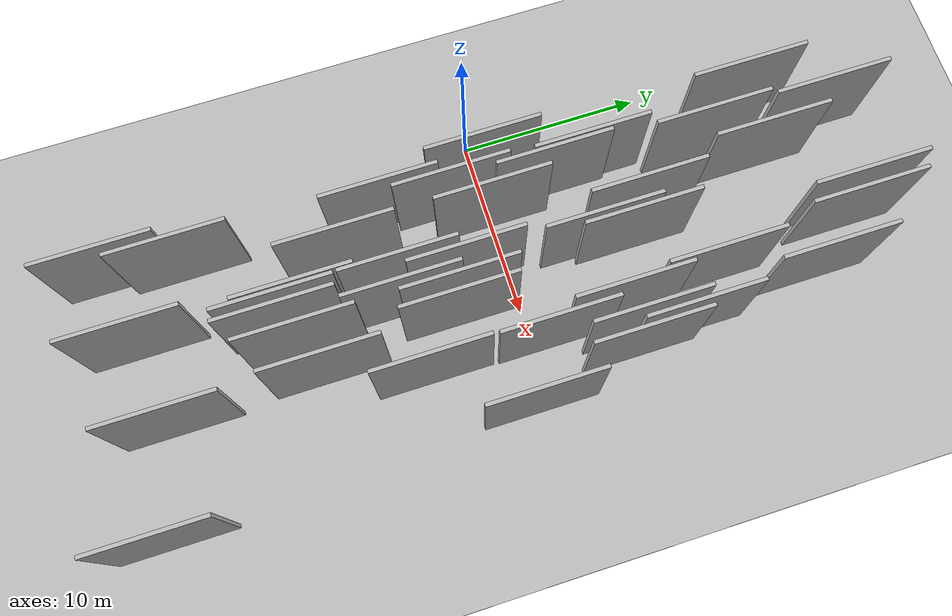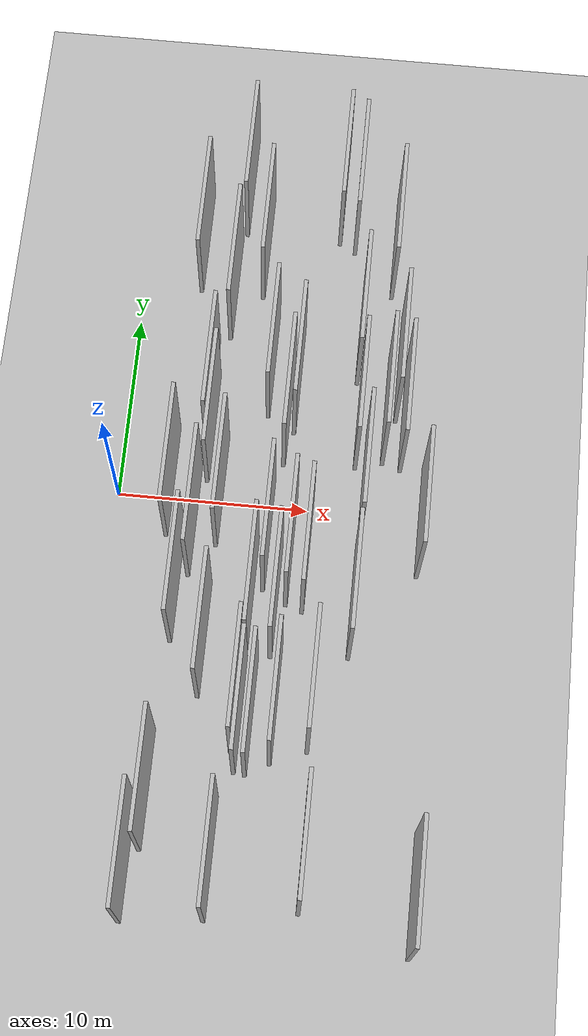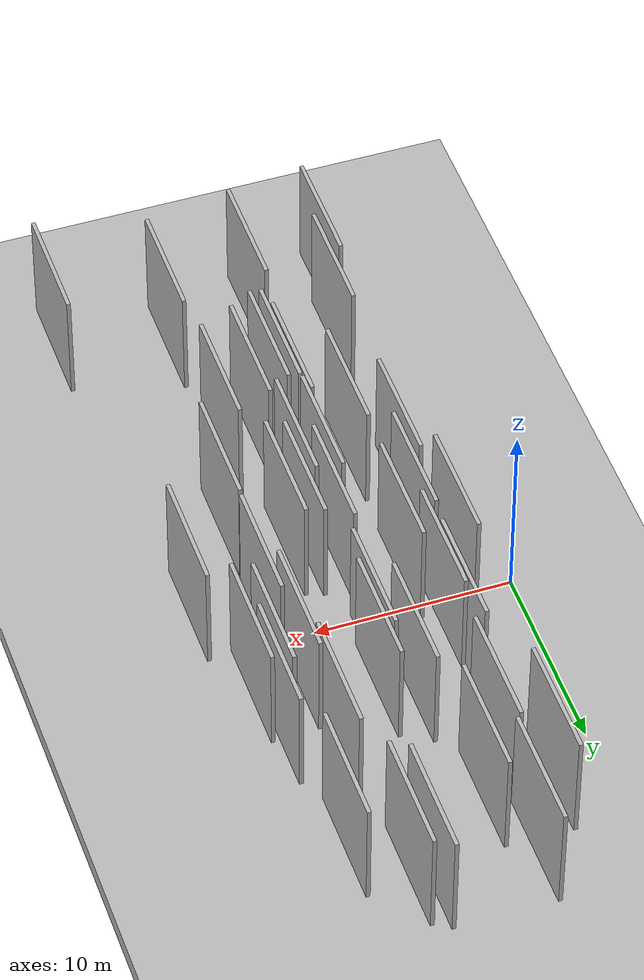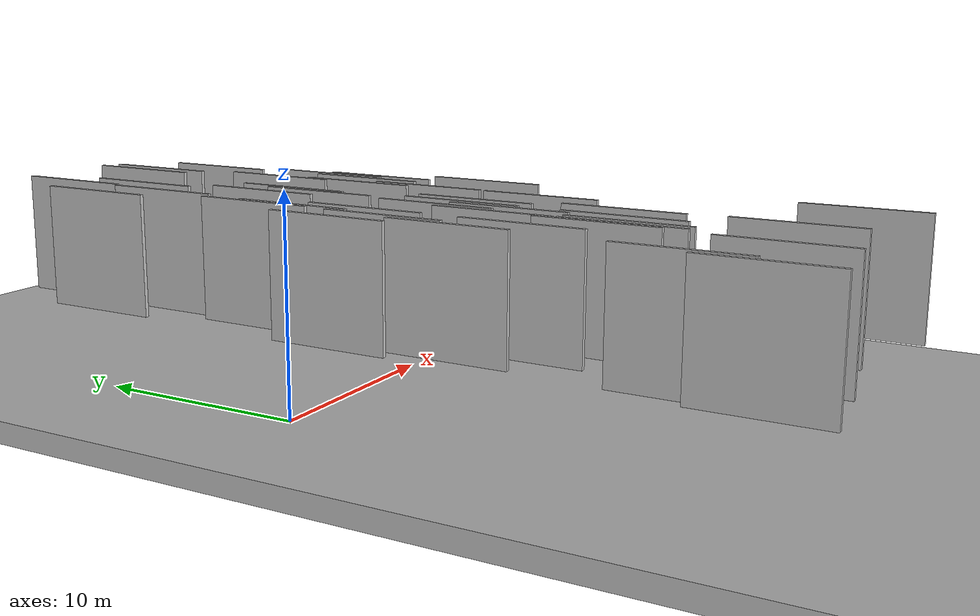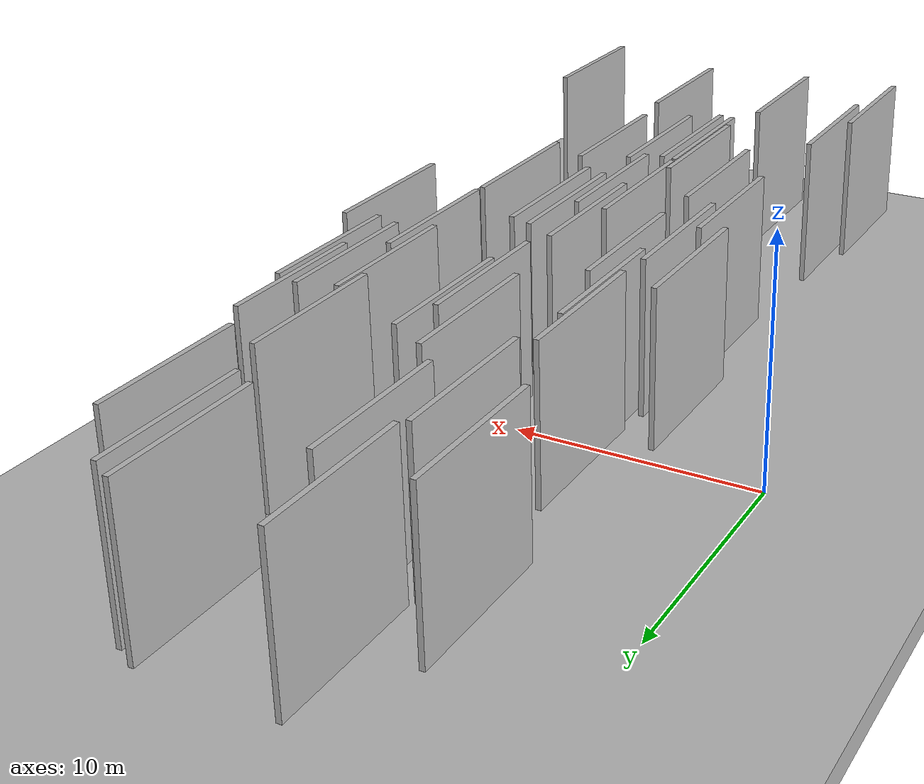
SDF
<?xml version="1.0" encoding="utf-8"?>

<sdf version="1.6">

   <world name="default">

      <gui fullscreen="0">

         <camera name="user_camera">

            <pose>-15 0 4.57585 0 0 0</pose>

            <view_controller>orbit</view_controller>

         </camera>

      </gui>

      <scene>

         <sky>

           <clouds>

             <speed>12</speed>

           </clouds>

         </sky>

         <ambient>0.4 0.4 0.4 1</ambient>

         <background>0.7 0.7 0.7 1</background>

         <shadows>1</shadows>

      </scene>

      <gravity>0 0 -9.8066</gravity>

      <magnetic_field>6e-06 2.3e-05 -4.2e-05</magnetic_field>

      <physics default="0" name="default_physics" type="ode">

         <ode>

            <solver>

               <type>quick</type>

               <iters>10</iters>

               <sor>1.0</sor>

               <use_dynamic_moi_rescaling>0</use_dynamic_moi_rescaling>

            </solver>

            <constraints>

               <cfm>0</cfm>

               <erp>0.2</erp>

               <contact_max_correcting_vel>100</contact_max_correcting_vel>

               <contact_surface_layer>0.001</contact_surface_layer>

            </constraints>

         </ode>

         <max_step_size>0.004</max_step_size>

         <real_time_factor>1</real_time_factor>

         <real_time_update_rate>250</real_time_update_rate>

      </physics>

      <light name="sun" type="directional">

         <cast_shadows>1</cast_shadows>

         <pose>0 0 10 0 0 0</pose>

         <diffuse>0.8 0.8 0.8 1</diffuse>

         <specular>0.2 0.2 0.2 1</specular>

         <attenuation>

            <range>1000</range>

            <constant>0.9</constant>

            <linear>0.01</linear>

            <quadratic>0.001</quadratic>

         </attenuation>

         <direction>-0.5 0.1 -0.9</direction>

      </light>

      <include>

         <name>ground_plane_1</name>

         <uri>model://HANNAS_ground_plane</uri>

         <pose>0 0 0  0 0 0</pose>

      </include>

      <include>

         <name>ground_plane_2</name>

         <uri>model://HANNAS_ground_plane</uri>

         <pose>100 0 0  0 0 0</pose>

      </include>

      <model name="HANNAS_wall_1">

         <static>1</static>

         <pose frame="">8.6059 4.4555 2.5 0.000000 0.000000 1.570796</pose>

         <link name="link">

            <pose frame="">0 0 3.00 0 0 0</pose>

            <collision name="collision">

               <geometry>

                  <box>

                     <size>6.00 0.2 6.00</size>

                  </box>

               </geometry>

               <max_contacts>10</max_contacts>

               <surface>

                  <contact>

                     <ode/>

                  </contact>

                  <bounce/>

                  <friction>

                     <torsional>

                        <ode/>

                     </torsional>

                     <ode/>

                  </friction>

               </surface>

            </collision>

            <visual name="visual">

               <cast_shadows>0</cast_shadows>

               <geometry>

                  <box>

                     <size>6.00 0.2 6.00</size>

                  </box>

               </geometry>

               <material>

                  <script>

                     <uri>model://HANNAS_wall/materials/scripts</uri>

                     <uri>model://HANNAS_wall/materials/textures</uri>

                     <name>vrc/HANNAS_wall</name>

                  </script>

               </material>

            </visual>

            <self_collide>0</self_collide>

            <enable_wind>0</enable_wind>

            <kinematic>0</kinematic>

         </link>

      </model>

      <model name="HANNAS_wall_2">

         <static>1</static>

         <pose frame="">14.1788 7.4548 2.5 0.000000 0.000000 1.570796</pose>

         <link name="link">

            <pose frame="">0 0 3.00 0 0 0</pose>

            <collision name="collision">

               <geometry>

                  <box>

                     <size>6.00 0.2 6.00</size>

                  </box>

               </geometry>

               <max_contacts>10</max_contacts>

               <surface>

                  <contact>

                     <ode/>

                  </contact>

                  <bounce/>

                  <friction>

                     <torsional>

                        <ode/>

                     </torsional>

                     <ode/>

                  </friction>

               </surface>

            </collision>

            <visual name="visual">

               <cast_shadows>0</cast_shadows>

               <geometry>

                  <box>

                     <size>6.00 0.2 6.00</size>

                  </box>

               </geometry>

               <material>

                  <script>

                     <uri>model://HANNAS_wall/materials/scripts</uri>

                     <uri>model://HANNAS_wall/materials/textures</uri>

                     <name>vrc/HANNAS_wall</name>

                  </script>

               </material>

            </visual>

            <self_collide>0</self_collide>

            <enable_wind>0</enable_wind>

            <kinematic>0</kinematic>

         </link>

      </model>

      <model name="HANNAS_wall_3">

         <static>1</static>

         <pose frame="">3.0007 0.1063 2.5 0.000000 0.000000 1.570796</pose>

         <link name="link">

            <pose frame="">0 0 3.00 0 0 0</pose>

            <collision name="collision">

               <geometry>

                  <box>

                     <size>6.00 0.2 6.00</size>

                  </box>

               </geometry>

               <max_contacts>10</max_contacts>

               <surface>

                  <contact>

                     <ode/>

                  </contact>

                  <bounce/>

                  <friction>

                     <torsional>

                        <ode/>

                     </torsional>

                     <ode/>

                  </friction>

               </surface>

            </collision>

            <visual name="visual">

               <cast_shadows>0</cast_shadows>

               <geometry>

                  <box>

                     <size>6.00 0.2 6.00</size>

                  </box>

               </geometry>

               <material>

                  <script>

                     <uri>model://HANNAS_wall/materials/scripts</uri>

                     <uri>model://HANNAS_wall/materials/textures</uri>

                     <name>vrc/HANNAS_wall</name>

                  </script>

               </material>

            </visual>

            <self_collide>0</self_collide>

            <enable_wind>0</enable_wind>

            <kinematic>0</kinematic>

         </link>

      </model>

      <model name="HANNAS_wall_4">

         <static>1</static>

         <pose frame="">16.7987 -19.7199 2.5 0.000000 0.000000 1.570796</pose>

         <link name="link">

            <pose frame="">0 0 3.00 0 0 0</pose>

            <collision name="collision">

               <geometry>

                  <box>

                     <size>6.00 0.2 6.00</size>

                  </box>

               </geometry>

               <max_contacts>10</max_contacts>

               <surface>

                  <contact>

                     <ode/>

                  </contact>

                  <bounce/>

                  <friction>

                     <torsional>

                        <ode/>

                     </torsional>

                     <ode/>

                  </friction>

               </surface>

            </collision>

            <visual name="visual">

               <cast_shadows>0</cast_shadows>

               <geometry>

                  <box>

                     <size>6.00 0.2 6.00</size>

                  </box>

               </geometry>

               <material>

                  <script>

                     <uri>model://HANNAS_wall/materials/scripts</uri>

                     <uri>model://HANNAS_wall/materials/textures</uri>

                     <name>vrc/HANNAS_wall</name>

                  </script>

               </material>

            </visual>

            <self_collide>0</self_collide>

            <enable_wind>0</enable_wind>

            <kinematic>0</kinematic>

         </link>

      </model>

      <model name="HANNAS_wall_5">

         <static>1</static>

         <pose frame="">3.5730 -15.8631 2.5 0.000000 0.000000 1.570796</pose>

         <link name="link">

            <pose frame="">0 0 3.00 0 0 0</pose>

            <collision name="collision">

               <geometry>

                  <box>

                     <size>6.00 0.2 6.00</size>

                  </box>

               </geometry>

               <max_contacts>10</max_contacts>

               <surface>

                  <contact>

                     <ode/>

                  </contact>

                  <bounce/>

                  <friction>

                     <torsional>

                        <ode/>

                     </torsional>

                     <ode/>

                  </friction>

               </surface>

            </collision>

            <visual name="visual">

               <cast_shadows>0</cast_shadows>

               <geometry>

                  <box>

                     <size>6.00 0.2 6.00</size>

                  </box>

               </geometry>

               <material>

                  <script>

                     <uri>model://HANNAS_wall/materials/scripts</uri>

                     <uri>model://HANNAS_wall/materials/textures</uri>

                     <name>vrc/HANNAS_wall</name>

                  </script>

               </material>

            </visual>

            <self_collide>0</self_collide>

            <enable_wind>0</enable_wind>

            <kinematic>0</kinematic>

         </link>

      </model>

      <model name="HANNAS_wall_6">

         <static>1</static>

         <pose frame="">11.4477 -18.1524 2.5 0.000000 0.000000 1.570796</pose>

         <link name="link">

            <pose frame="">0 0 3.00 0 0 0</pose>

            <collision name="collision">

               <geometry>

                  <box>

                     <size>6.00 0.2 6.00</size>

                  </box>

               </geometry>

               <max_contacts>10</max_contacts>

               <surface>

                  <contact>

                     <ode/>

                  </contact>

                  <bounce/>

                  <friction>

                     <torsional>

                        <ode/>

                     </torsional>

                     <ode/>

                  </friction>

               </surface>

            </collision>

            <visual name="visual">

               <cast_shadows>0</cast_shadows>

               <geometry>

                  <box>

                     <size>6.00 0.2 6.00</size>

                  </box>

               </geometry>

               <material>

                  <script>

                     <uri>model://HANNAS_wall/materials/scripts</uri>

                     <uri>model://HANNAS_wall/materials/textures</uri>

                     <name>vrc/HANNAS_wall</name>

                  </script>

               </material>

            </visual>

            <self_collide>0</self_collide>

            <enable_wind>0</enable_wind>

            <kinematic>0</kinematic>

         </link>

      </model>

      <model name="HANNAS_wall_7">

         <static>1</static>

         <pose frame="">8.9062 -5.7655 2.5 0.000000 0.000000 1.570796</pose>

         <link name="link">

            <pose frame="">0 0 3.00 0 0 0</pose>

            <collision name="collision">

               <geometry>

                  <box>

                     <size>6.00 0.2 6.00</size>

                  </box>

               </geometry>

               <max_contacts>10</max_contacts>

               <surface>

                  <contact>

                     <ode/>

                  </contact>

                  <bounce/>

                  <friction>

                     <torsional>

                        <ode/>

                     </torsional>

                     <ode/>

                  </friction>

               </surface>

            </collision>

            <visual name="visual">

               <cast_shadows>0</cast_shadows>

               <geometry>

                  <box>

                     <size>6.00 0.2 6.00</size>

                  </box>

               </geometry>

               <material>

                  <script>

                     <uri>model://HANNAS_wall/materials/scripts</uri>

                     <uri>model://HANNAS_wall/materials/textures</uri>

                     <name>vrc/HANNAS_wall</name>

                  </script>

               </material>

            </visual>

            <self_collide>0</self_collide>

            <enable_wind>0</enable_wind>

            <kinematic>0</kinematic>

         </link>

      </model>

      <model name="HANNAS_wall_8">

         <static>1</static>

         <pose frame="">12.7674 -5.4809 2.5 0.000000 0.000000 1.570796</pose>

         <link name="link">

            <pose frame="">0 0 3.00 0 0 0</pose>

            <collision name="collision">

               <geometry>

                  <box>

                     <size>6.00 0.2 6.00</size>

                  </box>

               </geometry>

               <max_contacts>10</max_contacts>

               <surface>

                  <contact>

                     <ode/>

                  </contact>

                  <bounce/>

                  <friction>

                     <torsional>

                        <ode/>

                     </torsional>

                     <ode/>

                  </friction>

               </surface>

            </collision>

            <visual name="visual">

               <cast_shadows>0</cast_shadows>

               <geometry>

                  <box>

                     <size>6.00 0.2 6.00</size>

                  </box>

               </geometry>

               <material>

                  <script>

                     <uri>model://HANNAS_wall/materials/scripts</uri>

                     <uri>model://HANNAS_wall/materials/textures</uri>

                     <name>vrc/HANNAS_wall</name>

                  </script>

               </material>

            </visual>

            <self_collide>0</self_collide>

            <enable_wind>0</enable_wind>

            <kinematic>0</kinematic>

         </link>

      </model>

      <model name="HANNAS_wall_9">

         <static>1</static>

         <pose frame="">7.5438 7.0990 2.5 0.000000 0.000000 1.570796</pose>

         <link name="link">

            <pose frame="">0 0 3.00 0 0 0</pose>

            <collision name="collision">

               <geometry>

                  <box>

                     <size>6.00 0.2 6.00</size>

                  </box>

               </geometry>

               <max_contacts>10</max_contacts>

               <surface>

                  <contact>

                     <ode/>

                  </contact>

                  <bounce/>

                  <friction>

                     <torsional>

                        <ode/>

                     </torsional>

                     <ode/>

                  </friction>

               </surface>

            </collision>

            <visual name="visual">

               <cast_shadows>0</cast_shadows>

               <geometry>

                  <box>

                     <size>6.00 0.2 6.00</size>

                  </box>

               </geometry>

               <material>

                  <script>

                     <uri>model://HANNAS_wall/materials/scripts</uri>

                     <uri>model://HANNAS_wall/materials/textures</uri>

                     <name>vrc/HANNAS_wall</name>

                  </script>

               </material>

            </visual>

            <self_collide>0</self_collide>

            <enable_wind>0</enable_wind>

            <kinematic>0</kinematic>

         </link>

      </model>

      <model name="HANNAS_wall_10">

         <static>1</static>

         <pose frame="">11.1655 -10.3818 2.5 0.000000 0.000000 1.570796</pose>

         <link name="link">

            <pose frame="">0 0 3.00 0 0 0</pose>

            <collision name="collision">

               <geometry>

                  <box>

                     <size>6.00 0.2 6.00</size>

                  </box>

               </geometry>

               <max_contacts>10</max_contacts>

               <surface>

                  <contact>

                     <ode/>

                  </contact>

                  <bounce/>

                  <friction>

                     <torsional>

                        <ode/>

                     </torsional>

                     <ode/>

                  </friction>

               </surface>

            </collision>

            <visual name="visual">

               <cast_shadows>0</cast_shadows>

               <geometry>

                  <box>

                     <size>6.00 0.2 6.00</size>

                  </box>

               </geometry>

               <material>

                  <script>

                     <uri>model://HANNAS_wall/materials/scripts</uri>

                     <uri>model://HANNAS_wall/materials/textures</uri>

                     <name>vrc/HANNAS_wall</name>

                  </script>

               </material>

            </visual>

            <self_collide>0</self_collide>

            <enable_wind>0</enable_wind>

            <kinematic>0</kinematic>

         </link>

      </model>

      <model name="HANNAS_wall_11">

         <static>1</static>

         <pose frame="">8.2481 -11.8106 2.5 0.000000 0.000000 1.570796</pose>

         <link name="link">

            <pose frame="">0 0 3.00 0 0 0</pose>

            <collision name="collision">

               <geometry>

                  <box>

                     <size>6.00 0.2 6.00</size>

                  </box>

               </geometry>

               <max_contacts>10</max_contacts>

               <surface>

                  <contact>

                     <ode/>

                  </contact>

                  <bounce/>

                  <friction>

                     <torsional>

                        <ode/>

                     </torsional>

                     <ode/>

                  </friction>

               </surface>

            </collision>

            <visual name="visual">

               <cast_shadows>0</cast_shadows>

               <geometry>

                  <box>

                     <size>6.00 0.2 6.00</size>

                  </box>

               </geometry>

               <material>

                  <script>

                     <uri>model://HANNAS_wall/materials/scripts</uri>

                     <uri>model://HANNAS_wall/materials/textures</uri>

                     <name>vrc/HANNAS_wall</name>

                  </script>

               </material>

            </visual>

            <self_collide>0</self_collide>

            <enable_wind>0</enable_wind>

            <kinematic>0</kinematic>

         </link>

      </model>

      <model name="HANNAS_wall_12">

         <static>1</static>

         <pose frame="">6.6210 13.8926 2.5 0.000000 0.000000 1.570796</pose>

         <link name="link">

            <pose frame="">0 0 3.00 0 0 0</pose>

            <collision name="collision">

               <geometry>

                  <box>

                     <size>6.00 0.2 6.00</size>

                  </box>

               </geometry>

               <max_contacts>10</max_contacts>

               <surface>

                  <contact>

                     <ode/>

                  </contact>

                  <bounce/>

                  <friction>

                     <torsional>

                        <ode/>

                     </torsional>

                     <ode/>

                  </friction>

               </surface>

            </collision>

            <visual name="visual">

               <cast_shadows>0</cast_shadows>

               <geometry>

                  <box>

                     <size>6.00 0.2 6.00</size>

                  </box>

               </geometry>

               <material>

                  <script>

                     <uri>model://HANNAS_wall/materials/scripts</uri>

                     <uri>model://HANNAS_wall/materials/textures</uri>

                     <name>vrc/HANNAS_wall</name>

                  </script>

               </material>

            </visual>

            <self_collide>0</self_collide>

            <enable_wind>0</enable_wind>

            <kinematic>0</kinematic>

         </link>

      </model>

      <model name="HANNAS_wall_13">

         <static>1</static>

         <pose frame="">8.9786 6.2793 2.5 0.000000 0.000000 1.570796</pose>

         <link name="link">

            <pose frame="">0 0 3.00 0 0 0</pose>

            <collision name="collision">

               <geometry>

                  <box>

                     <size>6.00 0.2 6.00</size>

                  </box>

               </geometry>

               <max_contacts>10</max_contacts>

               <surface>

                  <contact>

                     <ode/>

                  </contact>

                  <bounce/>

                  <friction>

                     <torsional>

                        <ode/>

                     </torsional>

                     <ode/>

                  </friction>

               </surface>

            </collision>

            <visual name="visual">

               <cast_shadows>0</cast_shadows>

               <geometry>

                  <box>

                     <size>6.00 0.2 6.00</size>

                  </box>

               </geometry>

               <material>

                  <script>

                     <uri>model://HANNAS_wall/materials/scripts</uri>

                     <uri>model://HANNAS_wall/materials/textures</uri>

                     <name>vrc/HANNAS_wall</name>

                  </script>

               </material>

            </visual>

            <self_collide>0</self_collide>

            <enable_wind>0</enable_wind>

            <kinematic>0</kinematic>

         </link>

      </model>

      <model name="HANNAS_wall_14">

         <static>1</static>

         <pose frame="">10.4378 17.4808 2.5 0.000000 0.000000 1.570796</pose>

         <link name="link">

            <pose frame="">0 0 3.00 0 0 0</pose>

            <collision name="collision">

               <geometry>

                  <box>

                     <size>6.00 0.2 6.00</size>

                  </box>

               </geometry>

               <max_contacts>10</max_contacts>

               <surface>

                  <contact>

                     <ode/>

                  </contact>

                  <bounce/>

                  <friction>

                     <torsional>

                        <ode/>

                     </torsional>

                     <ode/>

                  </friction>

               </surface>

            </collision>

            <visual name="visual">

               <cast_shadows>0</cast_shadows>

               <geometry>

                  <box>

                     <size>6.00 0.2 6.00</size>

                  </box>

               </geometry>

               <material>

                  <script>

                     <uri>model://HANNAS_wall/materials/scripts</uri>

                     <uri>model://HANNAS_wall/materials/textures</uri>

                     <name>vrc/HANNAS_wall</name>

                  </script>

               </material>

            </visual>

            <self_collide>0</self_collide>

            <enable_wind>0</enable_wind>

            <kinematic>0</kinematic>

         </link>

      </model>

      <model name="HANNAS_wall_15">

         <static>1</static>

         <pose frame="">7.6679 -5.5635 2.5 0.000000 0.000000 1.570796</pose>

         <link name="link">

            <pose frame="">0 0 3.00 0 0 0</pose>

            <collision name="collision">

               <geometry>

                  <box>

                     <size>6.00 0.2 6.00</size>

                  </box>

               </geometry>

               <max_contacts>10</max_contacts>

               <surface>

                  <contact>

                     <ode/>

                  </contact>

                  <bounce/>

                  <friction>

                     <torsional>

                        <ode/>

                     </torsional>

                     <ode/>

                  </friction>

               </surface>

            </collision>

            <visual name="visual">

               <cast_shadows>0</cast_shadows>

               <geometry>

                  <box>

                     <size>6.00 0.2 6.00</size>

                  </box>

               </geometry>

               <material>

                  <script>

                     <uri>model://HANNAS_wall/materials/scripts</uri>

                     <uri>model://HANNAS_wall/materials/textures</uri>

                     <name>vrc/HANNAS_wall</name>

                  </script>

               </material>

            </visual>

            <self_collide>0</self_collide>

            <enable_wind>0</enable_wind>

            <kinematic>0</kinematic>

         </link>

      </model>

      <model name="HANNAS_wall_16">

         <static>1</static>

         <pose frame="">13.4509 14.5572 2.5 0.000000 0.000000 1.570796</pose>

         <link name="link">

            <pose frame="">0 0 3.00 0 0 0</pose>

            <collision name="collision">

               <geometry>

                  <box>

                     <size>6.00 0.2 6.00</size>

                  </box>

               </geometry>

               <max_contacts>10</max_contacts>

               <surface>

                  <contact>

                     <ode/>

                  </contact>

                  <bounce/>

                  <friction>

                     <torsional>

                        <ode/>

                     </torsional>

                     <ode/>

                  </friction>

               </surface>

            </collision>

            <visual name="visual">

               <cast_shadows>0</cast_shadows>

               <geometry>

                  <box>

                     <size>6.00 0.2 6.00</size>

                  </box>

               </geometry>

               <material>

                  <script>

                     <uri>model://HANNAS_wall/materials/scripts</uri>

                     <uri>model://HANNAS_wall/materials/textures</uri>

                     <name>vrc/HANNAS_wall</name>

                  </script>

               </material>

            </visual>

            <self_collide>0</self_collide>

            <enable_wind>0</enable_wind>

            <kinematic>0</kinematic>

         </link>

      </model>

      <model name="HANNAS_wall_17">

         <static>1</static>

         <pose frame="">3.3088 13.9810 2.5 0.000000 0.000000 1.570796</pose>

         <link name="link">

            <pose frame="">0 0 3.00 0 0 0</pose>

            <collision name="collision">

               <geometry>

                  <box>

                     <size>6.00 0.2 6.00</size>

                  </box>

               </geometry>

               <max_contacts>10</max_contacts>

               <surface>

                  <contact>

                     <ode/>

                  </contact>

                  <bounce/>

                  <friction>

                     <torsional>

                        <ode/>

                     </torsional>

                     <ode/>

                  </friction>

               </surface>

            </collision>

            <visual name="visual">

               <cast_shadows>0</cast_shadows>

               <geometry>

                  <box>

                     <size>6.00 0.2 6.00</size>

                  </box>

               </geometry>

               <material>

                  <script>

                     <uri>model://HANNAS_wall/materials/scripts</uri>

                     <uri>model://HANNAS_wall/materials/textures</uri>

                     <name>vrc/HANNAS_wall</name>

                  </script>

               </material>

            </visual>

            <self_collide>0</self_collide>

            <enable_wind>0</enable_wind>

            <kinematic>0</kinematic>

         </link>

      </model>

      <model name="HANNAS_wall_18">

         <static>1</static>

         <pose frame="">4.3541 -1.9218 2.5 0.000000 0.000000 1.570796</pose>

         <link name="link">

            <pose frame="">0 0 3.00 0 0 0</pose>

            <collision name="collision">

               <geometry>

                  <box>

                     <size>6.00 0.2 6.00</size>

                  </box>

               </geometry>

               <max_contacts>10</max_contacts>

               <surface>

                  <contact>

                     <ode/>

                  </contact>

                  <bounce/>

                  <friction>

                     <torsional>

                        <ode/>

                     </torsional>

                     <ode/>

                  </friction>

               </surface>

            </collision>

            <visual name="visual">

               <cast_shadows>0</cast_shadows>

               <geometry>

                  <box>

                     <size>6.00 0.2 6.00</size>

                  </box>

               </geometry>

               <material>

                  <script>

                     <uri>model://HANNAS_wall/materials/scripts</uri>

                     <uri>model://HANNAS_wall/materials/textures</uri>

                     <name>vrc/HANNAS_wall</name>

                  </script>

               </material>

            </visual>

            <self_collide>0</self_collide>

            <enable_wind>0</enable_wind>

            <kinematic>0</kinematic>

         </link>

      </model>

      <model name="HANNAS_wall_19">

         <static>1</static>

         <pose frame="">13.6673 5.0333 2.5 0.000000 0.000000 1.570796</pose>

         <link name="link">

            <pose frame="">0 0 3.00 0 0 0</pose>

            <collision name="collision">

               <geometry>

                  <box>

                     <size>6.00 0.2 6.00</size>

                  </box>

               </geometry>

               <max_contacts>10</max_contacts>

               <surface>

                  <contact>

                     <ode/>

                  </contact>

                  <bounce/>

                  <friction>

                     <torsional>

                        <ode/>

                     </torsional>

                     <ode/>

                  </friction>

               </surface>

            </collision>

            <visual name="visual">

               <cast_shadows>0</cast_shadows>

               <geometry>

                  <box>

                     <size>6.00 0.2 6.00</size>

                  </box>

               </geometry>

               <material>

                  <script>

                     <uri>model://HANNAS_wall/materials/scripts</uri>

                     <uri>model://HANNAS_wall/materials/textures</uri>

                     <name>vrc/HANNAS_wall</name>

                  </script>

               </material>

            </visual>

            <self_collide>0</self_collide>

            <enable_wind>0</enable_wind>

            <kinematic>0</kinematic>

         </link>

      </model>

      <model name="HANNAS_wall_20">

         <static>1</static>

         <pose frame="">3.0209 -19.3131 2.5 0.000000 0.000000 1.570796</pose>

         <link name="link">

            <pose frame="">0 0 3.00 0 0 0</pose>

            <collision name="collision">

               <geometry>

                  <box>

                     <size>6.00 0.2 6.00</size>

                  </box>

               </geometry>

               <max_contacts>10</max_contacts>

               <surface>

                  <contact>

                     <ode/>

                  </contact>

                  <bounce/>

                  <friction>

                     <torsional>

                        <ode/>

                     </torsional>

                     <ode/>

                  </friction>

               </surface>

            </collision>

            <visual name="visual">

               <cast_shadows>0</cast_shadows>

               <geometry>

                  <box>

                     <size>6.00 0.2 6.00</size>

                  </box>

               </geometry>

               <material>

                  <script>

                     <uri>model://HANNAS_wall/materials/scripts</uri>

                     <uri>model://HANNAS_wall/materials/textures</uri>

                     <name>vrc/HANNAS_wall</name>

                  </script>

               </material>

            </visual>

            <self_collide>0</self_collide>

            <enable_wind>0</enable_wind>

            <kinematic>0</kinematic>

         </link>

      </model>

      <model name="HANNAS_wall_21">

         <static>1</static>

         <pose frame="">9.3960 -11.1374 2.5 0.000000 0.000000 1.570796</pose>

         <link name="link">

            <pose frame="">0 0 3.00 0 0 0</pose>

            <collision name="collision">

               <geometry>

                  <box>

                     <size>6.00 0.2 6.00</size>

                  </box>

               </geometry>

               <max_contacts>10</max_contacts>

               <surface>

                  <contact>

                     <ode/>

                  </contact>

                  <bounce/>

                  <friction>

                     <torsional>

                        <ode/>

                     </torsional>

                     <ode/>

                  </friction>

               </surface>

            </collision>

            <visual name="visual">

               <cast_shadows>0</cast_shadows>

               <geometry>

                  <box>

                     <size>6.00 0.2 6.00</size>

                  </box>

               </geometry>

               <material>

                  <script>

                     <uri>model://HANNAS_wall/materials/scripts</uri>

                     <uri>model://HANNAS_wall/materials/textures</uri>

                     <name>vrc/HANNAS_wall</name>

                  </script>

               </material>

            </visual>

            <self_collide>0</self_collide>

            <enable_wind>0</enable_wind>

            <kinematic>0</kinematic>

         </link>

      </model>

      <model name="HANNAS_wall_22">

         <static>1</static>

         <pose frame="">8.1999 -2.3507 2.5 0.000000 0.000000 1.570796</pose>

         <link name="link">

            <pose frame="">0 0 3.00 0 0 0</pose>

            <collision name="collision">

               <geometry>

                  <box>

                     <size>6.00 0.2 6.00</size>

                  </box>

               </geometry>

               <max_contacts>10</max_contacts>

               <surface>

                  <contact>

                     <ode/>

                  </contact>

                  <bounce/>

                  <friction>

                     <torsional>

                        <ode/>

                     </torsional>

                     <ode/>

                  </friction>

               </surface>

            </collision>

            <visual name="visual">

               <cast_shadows>0</cast_shadows>

               <geometry>

                  <box>

                     <size>6.00 0.2 6.00</size>

                  </box>

               </geometry>

               <material>

                  <script>

                     <uri>model://HANNAS_wall/materials/scripts</uri>

                     <uri>model://HANNAS_wall/materials/textures</uri>

                     <name>vrc/HANNAS_wall</name>

                  </script>

               </material>

            </visual>

            <self_collide>0</self_collide>

            <enable_wind>0</enable_wind>

            <kinematic>0</kinematic>

         </link>

      </model>

      <model name="HANNAS_wall_23">

         <static>1</static>

         <pose frame="">3.8497 -5.4383 2.5 0.000000 0.000000 1.570796</pose>

         <link name="link">

            <pose frame="">0 0 3.00 0 0 0</pose>

            <collision name="collision">

               <geometry>

                  <box>

                     <size>6.00 0.2 6.00</size>

                  </box>

               </geometry>

               <max_contacts>10</max_contacts>

               <surface>

                  <contact>

                     <ode/>

                  </contact>

                  <bounce/>

                  <friction>

                     <torsional>

                        <ode/>

                     </torsional>

                     <ode/>

                  </friction>

               </surface>

            </collision>

            <visual name="visual">

               <cast_shadows>0</cast_shadows>

               <geometry>

                  <box>

                     <size>6.00 0.2 6.00</size>

                  </box>

               </geometry>

               <material>

                  <script>

                     <uri>model://HANNAS_wall/materials/scripts</uri>

                     <uri>model://HANNAS_wall/materials/textures</uri>

                     <name>vrc/HANNAS_wall</name>

                  </script>

               </material>

            </visual>

            <self_collide>0</self_collide>

            <enable_wind>0</enable_wind>

            <kinematic>0</kinematic>

         </link>

      </model>

      <model name="HANNAS_wall_24">

         <static>1</static>

         <pose frame="">15.8574 -0.9060 2.5 0.000000 0.000000 1.570796</pose>

         <link name="link">

            <pose frame="">0 0 3.00 0 0 0</pose>

            <collision name="collision">

               <geometry>

                  <box>

                     <size>6.00 0.2 6.00</size>

                  </box>

               </geometry>

               <max_contacts>10</max_contacts>

               <surface>

                  <contact>

                     <ode/>

                  </contact>

                  <bounce/>

                  <friction>

                     <torsional>

                        <ode/>

                     </torsional>

                     <ode/>

                  </friction>

               </surface>

            </collision>

            <visual name="visual">

               <cast_shadows>0</cast_shadows>

               <geometry>

                  <box>

                     <size>6.00 0.2 6.00</size>

                  </box>

               </geometry>

               <material>

                  <script>

                     <uri>model://HANNAS_wall/materials/scripts</uri>

                     <uri>model://HANNAS_wall/materials/textures</uri>

                     <name>vrc/HANNAS_wall</name>

                  </script>

               </material>

            </visual>

            <self_collide>0</self_collide>

            <enable_wind>0</enable_wind>

            <kinematic>0</kinematic>

         </link>

      </model>

      <model name="HANNAS_wall_25">

         <static>1</static>

         <pose frame="">5.5255 -8.1185 2.5 0.000000 0.000000 1.570796</pose>

         <link name="link">

            <pose frame="">0 0 3.00 0 0 0</pose>

            <collision name="collision">

               <geometry>

                  <box>

                     <size>6.00 0.2 6.00</size>

                  </box>

               </geometry>

               <max_contacts>10</max_contacts>

               <surface>

                  <contact>

                     <ode/>

                  </contact>

                  <bounce/>

                  <friction>

                     <torsional>

                        <ode/>

                     </torsional>

                     <ode/>

                  </friction>

               </surface>

            </collision>

            <visual name="visual">

               <cast_shadows>0</cast_shadows>

               <geometry>

                  <box>

                     <size>6.00 0.2 6.00</size>

                  </box>

               </geometry>

               <material>

                  <script>

                     <uri>model://HANNAS_wall/materials/scripts</uri>

                     <uri>model://HANNAS_wall/materials/textures</uri>

                     <name>vrc/HANNAS_wall</name>

                  </script>

               </material>

            </visual>

            <self_collide>0</self_collide>

            <enable_wind>0</enable_wind>

            <kinematic>0</kinematic>

         </link>

      </model>

      <model name="HANNAS_wall_26">

         <static>1</static>

         <pose frame="">14.6102 4.7250 2.5 0.000000 0.000000 1.570796</pose>

         <link name="link">

            <pose frame="">0 0 3.00 0 0 0</pose>

            <collision name="collision">

               <geometry>

                  <box>

                     <size>6.00 0.2 6.00</size>

                  </box>

               </geometry>

               <max_contacts>10</max_contacts>

               <surface>

                  <contact>

                     <ode/>

                  </contact>

                  <bounce/>

                  <friction>

                     <torsional>

                        <ode/>

                     </torsional>

                     <ode/>

                  </friction>

               </surface>

            </collision>

            <visual name="visual">

               <cast_shadows>0</cast_shadows>

               <geometry>

                  <box>

                     <size>6.00 0.2 6.00</size>

                  </box>

               </geometry>

               <material>

                  <script>

                     <uri>model://HANNAS_wall/materials/scripts</uri>

                     <uri>model://HANNAS_wall/materials/textures</uri>

                     <name>vrc/HANNAS_wall</name>

                  </script>

               </material>

            </visual>

            <self_collide>0</self_collide>

            <enable_wind>0</enable_wind>

            <kinematic>0</kinematic>

         </link>

      </model>

      <model name="HANNAS_wall_27">

         <static>1</static>

         <pose frame="">12.2904 4.6481 2.5 0.000000 0.000000 1.570796</pose>

         <link name="link">

            <pose frame="">0 0 3.00 0 0 0</pose>

            <collision name="collision">

               <geometry>

                  <box>

                     <size>6.00 0.2 6.00</size>

                  </box>

               </geometry>

               <max_contacts>10</max_contacts>

               <surface>

                  <contact>

                     <ode/>

                  </contact>

                  <bounce/>

                  <friction>

                     <torsional>

                        <ode/>

                     </torsional>

                     <ode/>

                  </friction>

               </surface>

            </collision>

            <visual name="visual">

               <cast_shadows>0</cast_shadows>

               <geometry>

                  <box>

                     <size>6.00 0.2 6.00</size>

                  </box>

               </geometry>

               <material>

                  <script>

                     <uri>model://HANNAS_wall/materials/scripts</uri>

                     <uri>model://HANNAS_wall/materials/textures</uri>

                     <name>vrc/HANNAS_wall</name>

                  </script>

               </material>

            </visual>

            <self_collide>0</self_collide>

            <enable_wind>0</enable_wind>

            <kinematic>0</kinematic>

         </link>

      </model>

      <model name="HANNAS_wall_28">

         <static>1</static>

         <pose frame="">11.2876 16.9936 2.5 0.000000 0.000000 1.570796</pose>

         <link name="link">

            <pose frame="">0 0 3.00 0 0 0</pose>

            <collision name="collision">

               <geometry>

                  <box>

                     <size>6.00 0.2 6.00</size>

                  </box>

               </geometry>

               <max_contacts>10</max_contacts>

               <surface>

                  <contact>

                     <ode/>

                  </contact>

                  <bounce/>

                  <friction>

                     <torsional>

                        <ode/>

                     </torsional>

                     <ode/>

                  </friction>

               </surface>

            </collision>

            <visual name="visual">

               <cast_shadows>0</cast_shadows>

               <geometry>

                  <box>

                     <size>6.00 0.2 6.00</size>

                  </box>

               </geometry>

               <material>

                  <script>

                     <uri>model://HANNAS_wall/materials/scripts</uri>

                     <uri>model://HANNAS_wall/materials/textures</uri>

                     <name>vrc/HANNAS_wall</name>

                  </script>

               </material>

            </visual>

            <self_collide>0</self_collide>

            <enable_wind>0</enable_wind>

            <kinematic>0</kinematic>

         </link>

      </model>

      <model name="HANNAS_wall_29">

         <static>1</static>

         <pose frame="">9.4121 -3.0317 2.5 0.000000 0.000000 1.570796</pose>

         <link name="link">

            <pose frame="">0 0 3.00 0 0 0</pose>

            <collision name="collision">

               <geometry>

                  <box>

                     <size>6.00 0.2 6.00</size>

                  </box>

               </geometry>

               <max_contacts>10</max_contacts>

               <surface>

                  <contact>

                     <ode/>

                  </contact>

                  <bounce/>

                  <friction>

                     <torsional>

                        <ode/>

                     </torsional>

                     <ode/>

                  </friction>

               </surface>

            </collision>

            <visual name="visual">

               <cast_shadows>0</cast_shadows>

               <geometry>

                  <box>

                     <size>6.00 0.2 6.00</size>

                  </box>

               </geometry>

               <material>

                  <script>

                     <uri>model://HANNAS_wall/materials/scripts</uri>

                     <uri>model://HANNAS_wall/materials/textures</uri>

                     <name>vrc/HANNAS_wall</name>

                  </script>

               </material>

            </visual>

            <self_collide>0</self_collide>

            <enable_wind>0</enable_wind>

            <kinematic>0</kinematic>

         </link>

      </model>

      <model name="HANNAS_wall_30">

         <static>1</static>

         <pose frame="">12.0132 9.4062 2.5 0.000000 0.000000 1.570796</pose>

         <link name="link">

            <pose frame="">0 0 3.00 0 0 0</pose>

            <collision name="collision">

               <geometry>

                  <box>

                     <size>6.00 0.2 6.00</size>

                  </box>

               </geometry>

               <max_contacts>10</max_contacts>

               <surface>

                  <contact>

                     <ode/>

                  </contact>

                  <bounce/>

                  <friction>

                     <torsional>

                        <ode/>

                     </torsional>

                     <ode/>

                  </friction>

               </surface>

            </collision>

            <visual name="visual">

               <cast_shadows>0</cast_shadows>

               <geometry>

                  <box>

                     <size>6.00 0.2 6.00</size>

                  </box>

               </geometry>

               <material>

                  <script>

                     <uri>model://HANNAS_wall/materials/scripts</uri>

                     <uri>model://HANNAS_wall/materials/textures</uri>

                     <name>vrc/HANNAS_wall</name>

                  </script>

               </material>

            </visual>

            <self_collide>0</self_collide>

            <enable_wind>0</enable_wind>

            <kinematic>0</kinematic>

         </link>

      </model>

      <model name="HANNAS_wall_31">

         <static>1</static>

         <pose frame="">5.4083 17.5520 2.5 0.000000 0.000000 1.570796</pose>

         <link name="link">

            <pose frame="">0 0 3.00 0 0 0</pose>

            <collision name="collision">

               <geometry>

                  <box>

                     <size>6.00 0.2 6.00</size>

                  </box>

               </geometry>

               <max_contacts>10</max_contacts>

               <surface>

                  <contact>

                     <ode/>

                  </contact>

                  <bounce/>

                  <friction>

                     <torsional>

                        <ode/>

                     </torsional>

                     <ode/>

                  </friction>

               </surface>

            </collision>

            <visual name="visual">

               <cast_shadows>0</cast_shadows>

               <geometry>

                  <box>

                     <size>6.00 0.2 6.00</size>

                  </box>

               </geometry>

               <material>

                  <script>

                     <uri>model://HANNAS_wall/materials/scripts</uri>

                     <uri>model://HANNAS_wall/materials/textures</uri>

                     <name>vrc/HANNAS_wall</name>

                  </script>

               </material>

            </visual>

            <self_collide>0</self_collide>

            <enable_wind>0</enable_wind>

            <kinematic>0</kinematic>

         </link>

      </model>

      <model name="HANNAS_wall_32">

         <static>1</static>

         <pose frame="">7.4442 -10.6904 2.5 0.000000 0.000000 1.570796</pose>

         <link name="link">

            <pose frame="">0 0 3.00 0 0 0</pose>

            <collision name="collision">

               <geometry>

                  <box>

                     <size>6.00 0.2 6.00</size>

                  </box>

               </geometry>

               <max_contacts>10</max_contacts>

               <surface>

                  <contact>

                     <ode/>

                  </contact>

                  <bounce/>

                  <friction>

                     <torsional>

                        <ode/>

                     </torsional>

                     <ode/>

                  </friction>

               </surface>

            </collision>

            <visual name="visual">

               <cast_shadows>0</cast_shadows>

               <geometry>

                  <box>

                     <size>6.00 0.2 6.00</size>

                  </box>

               </geometry>

               <material>

                  <script>

                     <uri>model://HANNAS_wall/materials/scripts</uri>

                     <uri>model://HANNAS_wall/materials/textures</uri>

                     <name>vrc/HANNAS_wall</name>

                  </script>

               </material>

            </visual>

            <self_collide>0</self_collide>

            <enable_wind>0</enable_wind>

            <kinematic>0</kinematic>

         </link>

      </model>

      <model name="HANNAS_wall_33">

         <static>1</static>

         <pose frame="">12.8279 0.7913 2.5 0.000000 0.000000 1.570796</pose>

         <link name="link">

            <pose frame="">0 0 3.00 0 0 0</pose>

            <collision name="collision">

               <geometry>

                  <box>

                     <size>6.00 0.2 6.00</size>

                  </box>

               </geometry>

               <max_contacts>10</max_contacts>

               <surface>

                  <contact>

                     <ode/>

                  </contact>

                  <bounce/>

                  <friction>

                     <torsional>

                        <ode/>

                     </torsional>

                     <ode/>

                  </friction>

               </surface>

            </collision>

            <visual name="visual">

               <cast_shadows>0</cast_shadows>

               <geometry>

                  <box>

                     <size>6.00 0.2 6.00</size>

                  </box>

               </geometry>

               <material>

                  <script>

                     <uri>model://HANNAS_wall/materials/scripts</uri>

                     <uri>model://HANNAS_wall/materials/textures</uri>

                     <name>vrc/HANNAS_wall</name>

                  </script>

               </material>

            </visual>

            <self_collide>0</self_collide>

            <enable_wind>0</enable_wind>

            <kinematic>0</kinematic>

         </link>

      </model>

      <model name="HANNAS_wall_34">

         <static>1</static>

         <pose frame="">7.0060 -18.8931 2.5 0.000000 0.000000 1.570796</pose>

         <link name="link">

            <pose frame="">0 0 3.00 0 0 0</pose>

            <collision name="collision">

               <geometry>

                  <box>

                     <size>6.00 0.2 6.00</size>

                  </box>

               </geometry>

               <max_contacts>10</max_contacts>

               <surface>

                  <contact>

                     <ode/>

                  </contact>

                  <bounce/>

                  <friction>

                     <torsional>

                        <ode/>

                     </torsional>

                     <ode/>

                  </friction>

               </surface>

            </collision>

            <visual name="visual">

               <cast_shadows>0</cast_shadows>

               <geometry>

                  <box>

                     <size>6.00 0.2 6.00</size>

                  </box>

               </geometry>

               <material>

                  <script>

                     <uri>model://HANNAS_wall/materials/scripts</uri>

                     <uri>model://HANNAS_wall/materials/textures</uri>

                     <name>vrc/HANNAS_wall</name>

                  </script>

               </material>

            </visual>

            <self_collide>0</self_collide>

            <enable_wind>0</enable_wind>

            <kinematic>0</kinematic>

         </link>

      </model>

      <model name="HANNAS_wall_35">

         <static>1</static>

         <pose frame="">5.1392 11.3569 2.5 0.000000 0.000000 1.570796</pose>

         <link name="link">

            <pose frame="">0 0 3.00 0 0 0</pose>

            <collision name="collision">

               <geometry>

                  <box>

                     <size>6.00 0.2 6.00</size>

                  </box>

               </geometry>

               <max_contacts>10</max_contacts>

               <surface>

                  <contact>

                     <ode/>

                  </contact>

                  <bounce/>

                  <friction>

                     <torsional>

                        <ode/>

                     </torsional>

                     <ode/>

                  </friction>

               </surface>

            </collision>

            <visual name="visual">

               <cast_shadows>0</cast_shadows>

               <geometry>

                  <box>

                     <size>6.00 0.2 6.00</size>

                  </box>

               </geometry>

               <material>

                  <script>

                     <uri>model://HANNAS_wall/materials/scripts</uri>

                     <uri>model://HANNAS_wall/materials/textures</uri>

                     <name>vrc/HANNAS_wall</name>

                  </script>

               </material>

            </visual>

            <self_collide>0</self_collide>

            <enable_wind>0</enable_wind>

            <kinematic>0</kinematic>

         </link>

      </model>

      <model name="HANNAS_wall_36">

         <static>1</static>

         <pose frame="">10.2625 -3.3271 2.5 0.000000 0.000000 1.570796</pose>

         <link name="link">

            <pose frame="">0 0 3.00 0 0 0</pose>

            <collision name="collision">

               <geometry>

                  <box>

                     <size>6.00 0.2 6.00</size>

                  </box>

               </geometry>

               <max_contacts>10</max_contacts>

               <surface>

                  <contact>

                     <ode/>

                  </contact>

                  <bounce/>

                  <friction>

                     <torsional>

                        <ode/>

                     </torsional>

                     <ode/>

                  </friction>

               </surface>

            </collision>

            <visual name="visual">

               <cast_shadows>0</cast_shadows>

               <geometry>

                  <box>

                     <size>6.00 0.2 6.00</size>

                  </box>

               </geometry>

               <material>

                  <script>

                     <uri>model://HANNAS_wall/materials/scripts</uri>

                     <uri>model://HANNAS_wall/materials/textures</uri>

                     <name>vrc/HANNAS_wall</name>

                  </script>

               </material>

            </visual>

            <self_collide>0</self_collide>

            <enable_wind>0</enable_wind>

            <kinematic>0</kinematic>

         </link>

      </model>

      <model name="HANNAS_wall_37">

         <static>1</static>

         <pose frame="">4.5197 5.2571 2.5 0.000000 0.000000 1.570796</pose>

         <link name="link">

            <pose frame="">0 0 3.00 0 0 0</pose>

            <collision name="collision">

               <geometry>

                  <box>

                     <size>6.00 0.2 6.00</size>

                  </box>

               </geometry>

               <max_contacts>10</max_contacts>

               <surface>

                  <contact>

                     <ode/>

                  </contact>

                  <bounce/>

                  <friction>

                     <torsional>

                        <ode/>

                     </torsional>

                     <ode/>

                  </friction>

               </surface>

            </collision>

            <visual name="visual">

               <cast_shadows>0</cast_shadows>

               <geometry>

                  <box>

                     <size>6.00 0.2 6.00</size>

                  </box>

               </geometry>

               <material>

                  <script>

                     <uri>model://HANNAS_wall/materials/scripts</uri>

                     <uri>model://HANNAS_wall/materials/textures</uri>

                     <name>vrc/HANNAS_wall</name>

                  </script>

               </material>

            </visual>

            <self_collide>0</self_collide>

            <enable_wind>0</enable_wind>

            <kinematic>0</kinematic>

         </link>

      </model>

      <model name="HANNAS_wall_38">

         <static>1</static>

         <pose frame="">4.7743 3.2257 2.5 0.000000 0.000000 1.570796</pose>

         <link name="link">

            <pose frame="">0 0 3.00 0 0 0</pose>

            <collision name="collision">

               <geometry>

                  <box>

                     <size>6.00 0.2 6.00</size>

                  </box>

               </geometry>

               <max_contacts>10</max_contacts>

               <surface>

                  <contact>

                     <ode/>

                  </contact>

                  <bounce/>

                  <friction>

                     <torsional>

                        <ode/>

                     </torsional>

                     <ode/>

                  </friction>

               </surface>

            </collision>

            <visual name="visual">

               <cast_shadows>0</cast_shadows>

               <geometry>

                  <box>

                     <size>6.00 0.2 6.00</size>

                  </box>

               </geometry>

               <material>

                  <script>

                     <uri>model://HANNAS_wall/materials/scripts</uri>

                     <uri>model://HANNAS_wall/materials/textures</uri>

                     <name>vrc/HANNAS_wall</name>

                  </script>

               </material>

            </visual>

            <self_collide>0</self_collide>

            <enable_wind>0</enable_wind>

            <kinematic>0</kinematic>

         </link>

      </model>

      <model name="HANNAS_wall_39">

         <static>1</static>

         <pose frame="">5.5830 -0.2036 2.5 0.000000 0.000000 1.570796</pose>

         <link name="link">

            <pose frame="">0 0 3.00 0 0 0</pose>

            <collision name="collision">

               <geometry>

                  <box>

                     <size>6.00 0.2 6.00</size>

                  </box>

               </geometry>

               <max_contacts>10</max_contacts>

               <surface>

                  <contact>

                     <ode/>

                  </contact>

                  <bounce/>

                  <friction>

                     <torsional>

                        <ode/>

                     </torsional>

                     <ode/>

                  </friction>

               </surface>

            </collision>

            <visual name="visual">

               <cast_shadows>0</cast_shadows>

               <geometry>

                  <box>

                     <size>6.00 0.2 6.00</size>

                  </box>

               </geometry>

               <material>

                  <script>

                     <uri>model://HANNAS_wall/materials/scripts</uri>

                     <uri>model://HANNAS_wall/materials/textures</uri>

                     <name>vrc/HANNAS_wall</name>

                  </script>

               </material>

            </visual>

            <self_collide>0</self_collide>

            <enable_wind>0</enable_wind>

            <kinematic>0</kinematic>

         </link>

      </model>

      <model name="HANNAS_wall_40">

         <static>1</static>

         <pose frame="">7.6962 -11.7260 2.5 0.000000 0.000000 1.570796</pose>

         <link name="link">

            <pose frame="">0 0 3.00 0 0 0</pose>

            <collision name="collision">

               <geometry>

                  <box>

                     <size>6.00 0.2 6.00</size>

                  </box>

               </geometry>

               <max_contacts>10</max_contacts>

               <surface>

                  <contact>

                     <ode/>

                  </contact>

                  <bounce/>

                  <friction>

                     <torsional>

                        <ode/>

                     </torsional>

                     <ode/>

                  </friction>

               </surface>

            </collision>

            <visual name="visual">

               <cast_shadows>0</cast_shadows>

               <geometry>

                  <box>

                     <size>6.00 0.2 6.00</size>

                  </box>

               </geometry>

               <material>

                  <script>

                     <uri>model://HANNAS_wall/materials/scripts</uri>

                     <uri>model://HANNAS_wall/materials/textures</uri>

                     <name>vrc/HANNAS_wall</name>

                  </script>

               </material>

            </visual>

            <self_collide>0</self_collide>

            <enable_wind>0</enable_wind>

            <kinematic>0</kinematic>

         </link>

      </model>

   </world>

</sdf>
